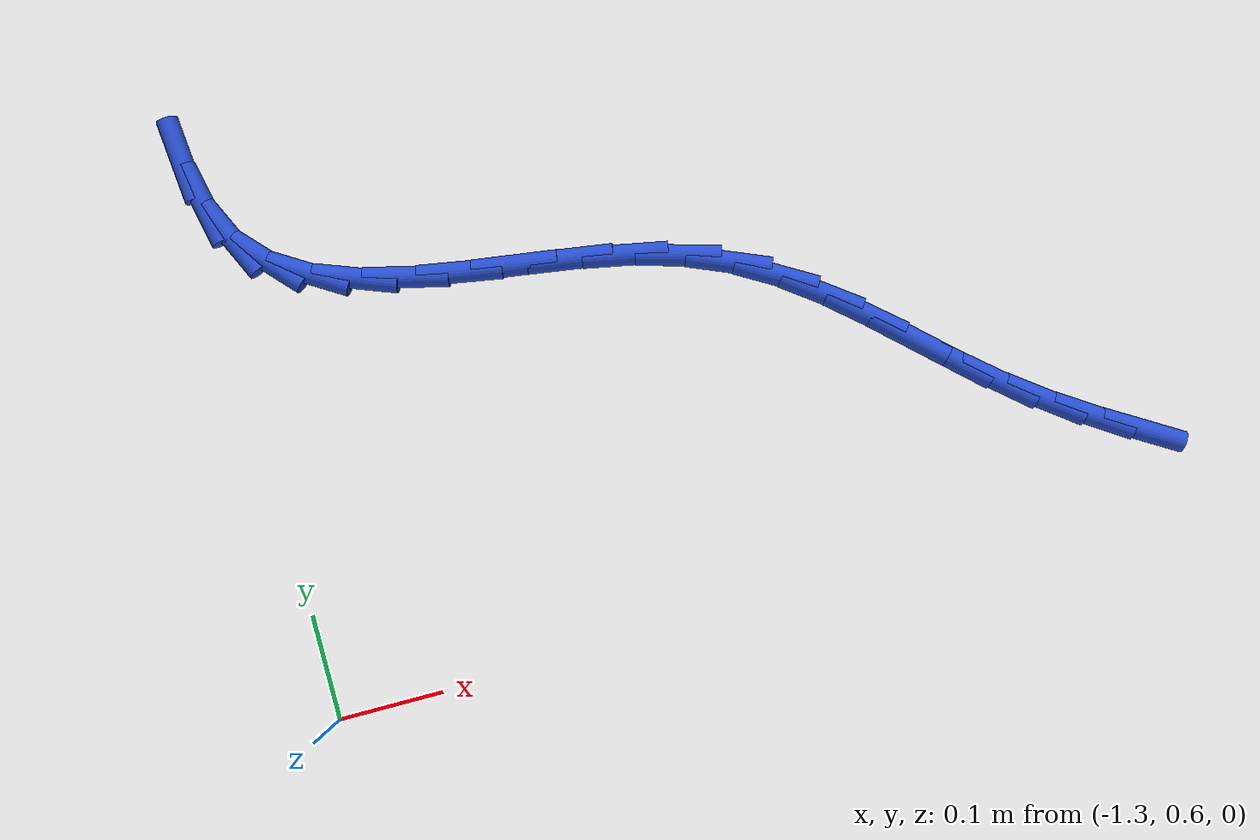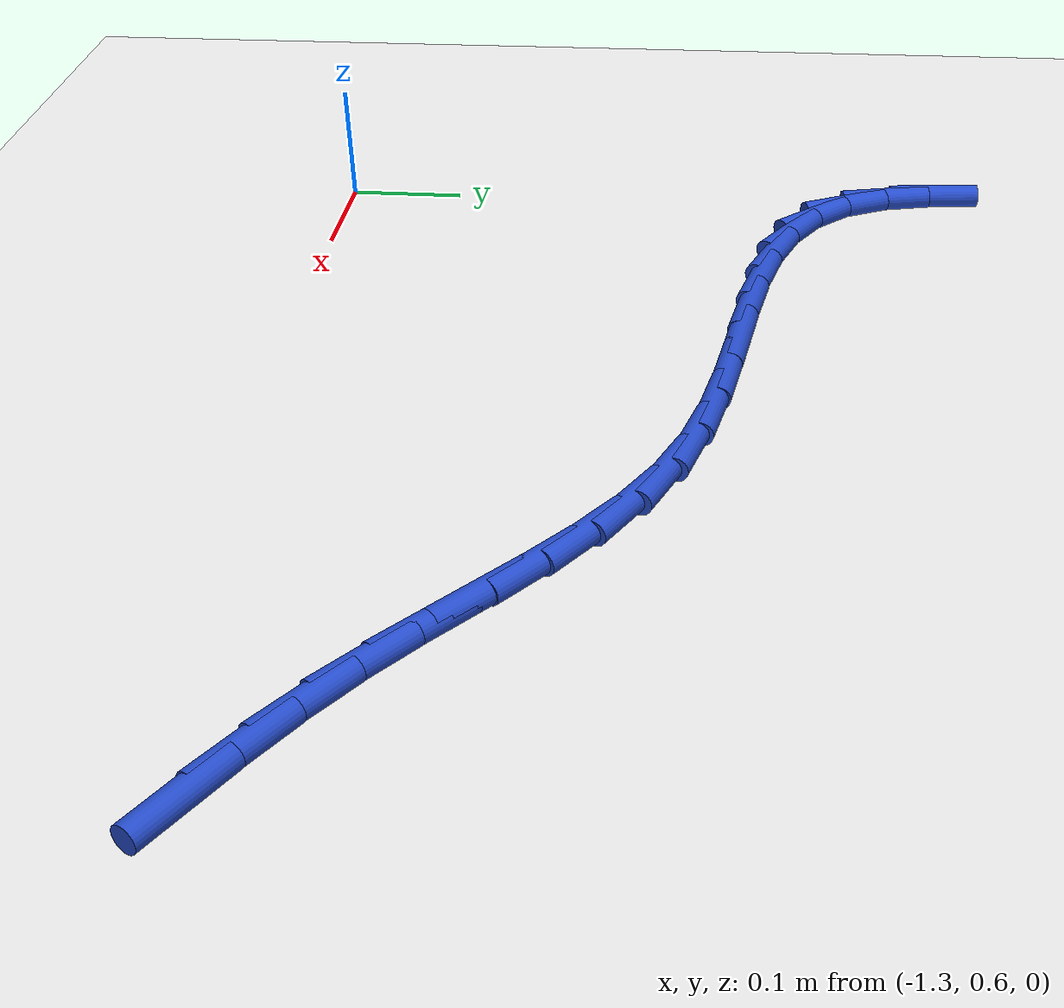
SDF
<sdf version="1.6">
 <world name="default">
  <model name="ground_plane">
   <static>1</static>
   <link name="link">
    <collision name="collision">
     <geometry><plane><normal>0 0 1</normal><size>100 100</size></plane></geometry>
     <surface><friction><ode><mu>100</mu><mu2>50</mu2></ode></friction></surface>
    </collision>
    <visual name="visual">
     <cast_shadows>0</cast_shadows>
     <geometry><plane><normal>0 0 1</normal><size>100 100</size></plane></geometry>
     <material>
      <script><uri>file://media/materials/scripts/gazebo.material</uri><name>Gazebo/WhiteGlow</name></script>
     </material>
    </visual>
   </link>
  </model>
  <model name="line">
   <link name="link_20">
    <pose>-0.5078669624939016 0.671187183731643 0.01 0 1.57 -0.5422601459008642</pose>
    <collision name="collision">
     <geometry><cylinder><radius>0.01</radius><length>0.08</length></cylinder></geometry>
    </collision>
    <visual name="visual">
     <material>
      <script><name>Gazebo/Blue</name><uri>file://media/materials/scripts/gazebo.material</uri></script>
     </material>
     <geometry><cylinder><radius>0.01</radius><length>0.08</length></cylinder></geometry>
    </visual>
   </link>
   <link name="link_21">
    <pose>-0.5486955567967804 0.6957866587523376 0.01 0 1.57 -0.5850602636240366</pose>
    <collision name="collision">
     <geometry><cylinder><radius>0.01</radius><length>0.08</length></cylinder></geometry>
    </collision>
    <visual name="visual">
     <material>
      <script><name>Gazebo/Blue</name><uri>file://media/materials/scripts/gazebo.material</uri></script>
     </material>
     <geometry><cylinder><radius>0.01</radius><length>0.08</length></cylinder></geometry>
    </visual>
   </link>
   <link name="link_22">
    <pose>-0.588052712899569 0.7218578200615751 0.01 0 1.57 -0.6405381645431764</pose>
    <collision name="collision">
     <geometry><cylinder><radius>0.01</radius><length>0.08</length></cylinder></geometry>
    </collision>
    <visual name="visual">
     <material>
      <script><name>Gazebo/Blue</name><uri>file://media/materials/scripts/gazebo.material</uri></script>
     </material>
     <geometry><cylinder><radius>0.01</radius><length>0.08</length></cylinder></geometry>
    </visual>
   </link>
   <link name="link_23">
    <pose>-0.6254909977106555 0.7497635931755963 0.01 0 1.57 -0.701884966377041</pose>
    <collision name="collision">
     <geometry><cylinder><radius>0.01</radius><length>0.08</length></cylinder></geometry>
    </collision>
    <visual name="visual">
     <material>
      <script><name>Gazebo/Blue</name><uri>file://media/materials/scripts/gazebo.material</uri></script>
     </material>
     <geometry><cylinder><radius>0.01</radius><length>0.08</length></cylinder></geometry>
    </visual>
   </link>
   <link name="link_24">
    <pose>-0.6608030714660044 0.7796205081808602 0.01 0 1.57 -0.7374043222740496</pose>
    <collision name="collision">
     <geometry><cylinder><radius>0.01</radius><length>0.08</length></cylinder></geometry>
    </collision>
    <visual name="visual">
     <material>
      <script><name>Gazebo/Blue</name><uri>file://media/materials/scripts/gazebo.material</uri></script>
     </material>
     <geometry><cylinder><radius>0.01</radius><length>0.08</length></cylinder></geometry>
    </visual>
   </link>
   <link name="link_25">
    <pose>-0.6947992999565886 0.8105006763115948 0.01 0 1.57 -0.7379386256422358</pose>
    <collision name="collision">
     <geometry><cylinder><radius>0.01</radius><length>0.08</length></cylinder></geometry>
    </collision>
    <visual name="visual">
     <material>
      <script><name>Gazebo/Blue</name><uri>file://media/materials/scripts/gazebo.material</uri></script>
     </material>
     <geometry><cylinder><radius>0.01</radius><length>0.08</length></cylinder></geometry>
    </visual>
   </link>
   <link name="link_26">
    <pose>-0.7285596538375517 0.8411995272005497 0.01 0 1.57 -0.7028001510497276</pose>
    <collision name="collision">
     <geometry><cylinder><radius>0.01</radius><length>0.08</length></cylinder></geometry>
    </collision>
    <visual name="visual">
     <material>
      <script><name>Gazebo/Blue</name><uri>file://media/materials/scripts/gazebo.material</uri></script>
     </material>
     <geometry><cylinder><radius>0.01</radius><length>0.08</length></cylinder></geometry>
    </visual>
   </link>
   <link name="link_27">
    <pose>-0.7631641056009044 0.8705124885953921 0.01 0 1.57 -0.6315892234551607</pose>
    <collision name="collision">
     <geometry><cylinder><radius>0.01</radius><length>0.08</length></cylinder></geometry>
    </collision>
    <visual name="visual">
     <material>
      <script><name>Gazebo/Blue</name><uri>file://media/materials/scripts/gazebo.material</uri></script>
     </material>
     <geometry><cylinder><radius>0.01</radius><length>0.08</length></cylinder></geometry>
    </visual>
   </link>
   <link name="link_28">
    <pose>-0.7996926277386576 0.8972349882437898 0.01 0 1.57 -0.5255568762798322</pose>
    <collision name="collision">
     <geometry><cylinder><radius>0.01</radius><length>0.08</length></cylinder></geometry>
    </collision>
    <visual name="visual">
     <material>
      <script><name>Gazebo/Blue</name><uri>file://media/materials/scripts/gazebo.material</uri></script>
     </material>
     <geometry><cylinder><radius>0.01</radius><length>0.08</length></cylinder></geometry>
    </visual>
   </link>
   <link name="link_29">
    <pose>-0.8392251927428213 0.9201624538934101 0.01 0 1.57 -0.39076782244642055</pose>
    <collision name="collision">
     <geometry><cylinder><radius>0.01</radius><length>0.08</length></cylinder></geometry>
    </collision>
    <visual name="visual">
     <material>
      <script><name>Gazebo/Blue</name><uri>file://media/materials/scripts/gazebo.material</uri></script>
     </material>
     <geometry><cylinder><radius>0.01</radius><length>0.08</length></cylinder></geometry>
    </visual>
   </link>
   <link name="link_30">
    <pose>-0.8828147587954682 0.9381192958116363 0.01 0 1.57 -0.2655494144139299</pose>
    <collision name="collision">
     <geometry><cylinder><radius>0.01</radius><length>0.08</length></cylinder></geometry>
    </collision>
    <visual name="visual">
     <material>
      <script><name>Gazebo/Blue</name><uri>file://media/materials/scripts/gazebo.material</uri></script>
     </material>
     <geometry><cylinder><radius>0.01</radius><length>0.08</length></cylinder></geometry>
    </visual>
   </link>
   <link name="link_31">
    <pose>-0.9304477525631661 0.9510741611812925 0.01 0 1.57 -0.18521239035500037</pose>
    <collision name="collision">
     <geometry><cylinder><radius>0.01</radius><length>0.08</length></cylinder></geometry>
    </collision>
    <visual name="visual">
     <material>
      <script><name>Gazebo/Blue</name><uri>file://media/materials/scripts/gazebo.material</uri></script>
     </material>
     <geometry><cylinder><radius>0.01</radius><length>0.08</length></cylinder></geometry>
    </visual>
   </link>
   <link name="link_32">
    <pose>-0.9807156047786213 0.9604923297939961 0.01 0 1.57 -0.14389766916247382</pose>
    <collision name="collision">
     <geometry><cylinder><radius>0.01</radius><length>0.08</length></cylinder></geometry>
    </collision>
    <visual name="visual">
     <material>
      <script><name>Gazebo/Blue</name><uri>file://media/materials/scripts/gazebo.material</uri></script>
     </material>
     <geometry><cylinder><radius>0.01</radius><length>0.08</length></cylinder></geometry>
    </visual>
   </link>
   <link name="link_33">
    <pose>-1.0321155510144813 0.9679401394765276 0.01 0 1.57 -0.1371674760556057</pose>
    <collision name="collision">
     <geometry><cylinder><radius>0.01</radius><length>0.08</length></cylinder></geometry>
    </collision>
    <visual name="visual">
     <material>
      <script><name>Gazebo/Blue</name><uri>file://media/materials/scripts/gazebo.material</uri></script>
     </material>
     <geometry><cylinder><radius>0.01</radius><length>0.08</length></cylinder></geometry>
    </visual>
   </link>
   <link name="link_34">
    <pose>-1.0831448268433932 0.9749839280556668 0.01 0 1.57 -0.16541518962619706</pose>
    <collision name="collision">
     <geometry><cylinder><radius>0.01</radius><length>0.08</length></cylinder></geometry>
    </collision>
    <visual name="visual">
     <material>
      <script><name>Gazebo/Blue</name><uri>file://media/materials/scripts/gazebo.material</uri></script>
     </material>
     <geometry><cylinder><radius>0.01</radius><length>0.08</length></cylinder></geometry>
    </visual>
   </link>
   <link name="link_35">
    <pose>-1.1323006678380052 0.9831900333581948 0.01 0 1.57 -0.2344633725893443</pose>
    <collision name="collision">
     <geometry><cylinder><radius>0.01</radius><length>0.08</length></cylinder></geometry>
    </collision>
    <visual name="visual">
     <material>
      <script><name>Gazebo/Blue</name><uri>file://media/materials/scripts/gazebo.material</uri></script>
     </material>
     <geometry><cylinder><radius>0.01</radius><length>0.08</length></cylinder></geometry>
    </visual>
   </link>
   <link name="link_36">
    <pose>-1.1780803095709633 0.9941247932108909 0.01 0 1.57 -0.3564536226096373</pose>
    <collision name="collision">
     <geometry><cylinder><radius>0.01</radius><length>0.08</length></cylinder></geometry>
    </collision>
    <visual name="visual">
     <material>
      <script><name>Gazebo/Blue</name><uri>file://media/materials/scripts/gazebo.material</uri></script>
     </material>
     <geometry><cylinder><radius>0.01</radius><length>0.08</length></cylinder></geometry>
    </visual>
   </link>
   <link name="link_37">
    <pose>-1.2189809876149162 1.009354545440536 0.01 0 1.57 -0.5484685845353197</pose>
    <collision name="collision">
     <geometry><cylinder><radius>0.01</radius><length>0.08</length></cylinder></geometry>
    </collision>
    <visual name="visual">
     <material>
      <script><name>Gazebo/Blue</name><uri>file://media/materials/scripts/gazebo.material</uri></script>
     </material>
     <geometry><cylinder><radius>0.01</radius><length>0.08</length></cylinder></geometry>
    </visual>
   </link>
   <link name="link_38">
    <pose>-1.25349993754251 1.0304456278739094 0.01 0 1.57 -0.8195495851167237</pose>
    <collision name="collision">
     <geometry><cylinder><radius>0.01</radius><length>0.08</length></cylinder></geometry>
    </collision>
    <visual name="visual">
     <material>
      <script><name>Gazebo/Blue</name><uri>file://media/materials/scripts/gazebo.material</uri></script>
     </material>
     <geometry><cylinder><radius>0.01</radius><length>0.08</length></cylinder></geometry>
    </visual>
   </link>
   <link name="link_39">
    <pose>-1.280134394926393 1.0589643783377927 0.01 0 1.57 -1.1343944330731641</pose>
    <collision name="collision">
     <geometry><cylinder><radius>0.01</radius><length>0.08</length></cylinder></geometry>
    </collision>
    <visual name="visual">
     <material>
      <script><name>Gazebo/Blue</name><uri>file://media/materials/scripts/gazebo.material</uri></script>
     </material>
     <geometry><cylinder><radius>0.01</radius><length>0.08</length></cylinder></geometry>
    </visual>
   </link>
   <link name="link_40">
    <pose>-1.2975490972540165 1.096303544656579 0.01 0 1.57 -1.3648231087718672</pose>
    <collision name="collision">
     <geometry><cylinder><radius>0.01</radius><length>0.08</length></cylinder></geometry>
    </collision>
    <visual name="visual">
     <material>
      <script><name>Gazebo/Blue</name><uri>file://media/materials/scripts/gazebo.material</uri></script>
     </material>
     <geometry><cylinder><radius>0.01</radius><length>0.08</length></cylinder></geometry>
    </visual>
   </link>
   <link name="link_41">
    <pose>-1.3069370573626427 1.1412357056582705 0.01 0 1.57 -1.4794764498383255</pose>
    <collision name="collision">
     <geometry><cylinder><radius>0.01</radius><length>0.08</length></cylinder></geometry>
    </collision>
    <visual name="visual">
     <material>
      <script><name>Gazebo/Blue</name><uri>file://media/materials/scripts/gazebo.material</uri></script>
     </material>
     <geometry><cylinder><radius>0.01</radius><length>0.08</length></cylinder></geometry>
    </visual>
   </link>
  </model>
 </world>
</sdf>
